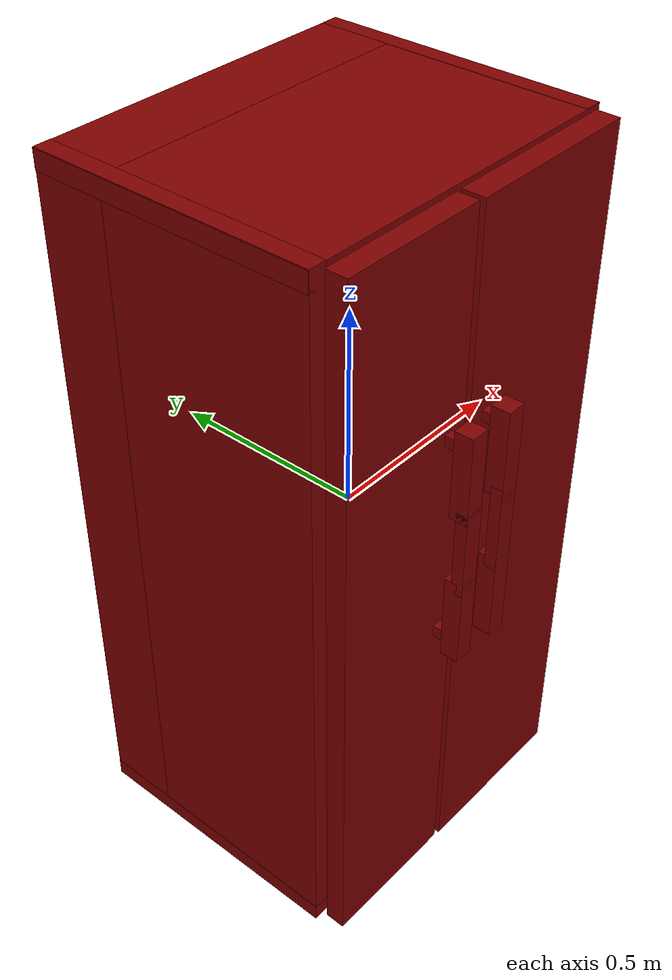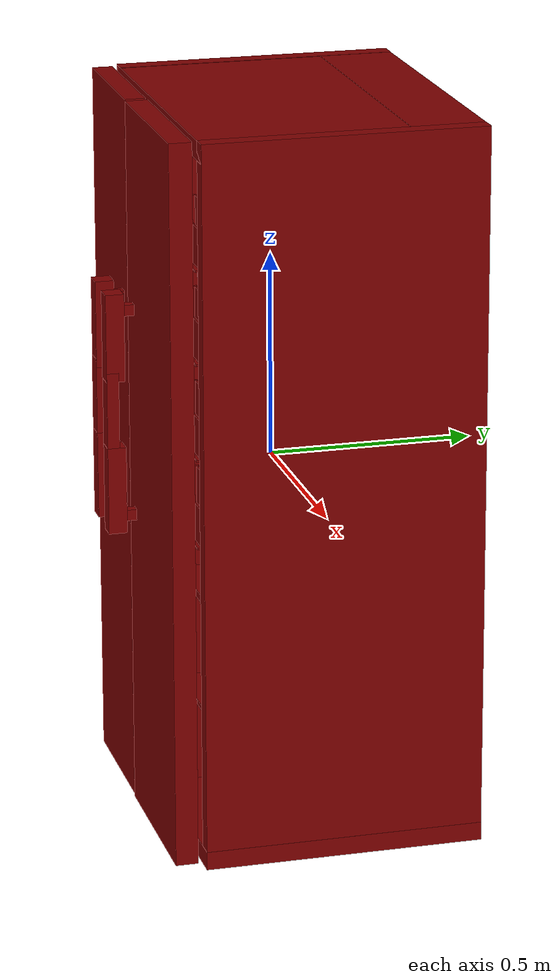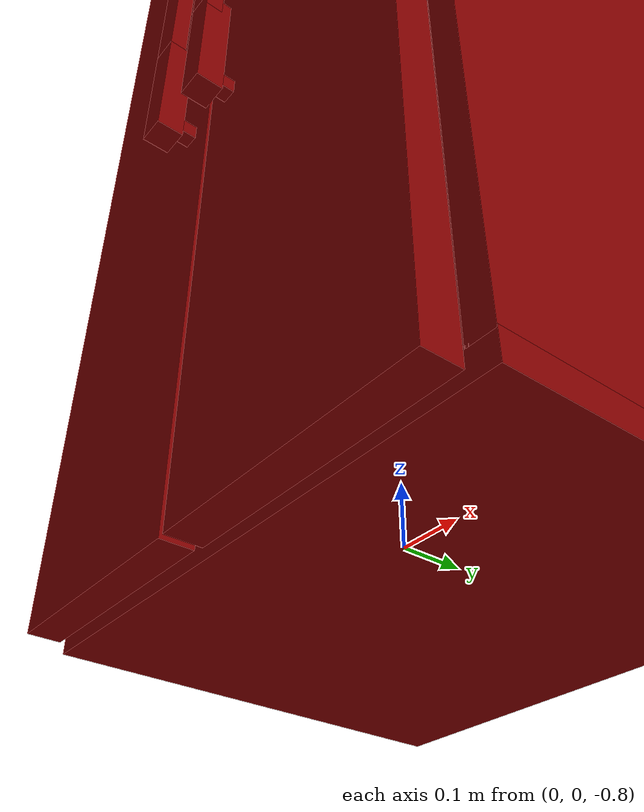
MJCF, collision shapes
<mujoco model="model">
  <compiler angle="radian"/>
  <asset>
    <mesh file="visuals/Body001.obj" name="Body001_vis"/>
    <mesh file="visuals/Body001_Clear001.obj" name="Body001_Clear001_vis"/>
    <mesh file="visuals/Door001.obj" name="Door001_vis"/>
    <mesh file="visuals/Door002.obj" name="Door002_vis"/>
    <mesh file="visuals/Door002_Clear.obj" name="Door002_Clear_vis"/>
    <mesh file="visuals/Drawer001_Clear.obj" name="Drawer001_Clear_vis"/>
    <mesh file="visuals/Drawer002_Clear.obj" name="Drawer002_Clear_vis"/>
    <mesh file="visuals/Drawer003.obj" name="Drawer003_vis"/>
    <mesh file="visuals/Drawer004.obj" name="Drawer004_vis"/>
    <texture file="visuals/T_BC001.png" name="Body001_material" type="2d"/>
    <material name="Body001_material" rgba="1 1 1 1.0" texture="Body001_material" shininess="0.6141486167907715" specular="0.3103448502657381"/>
    <texture file="visuals/T_BC001.png" name="Body001_Clear001_material" type="2d"/>
    <material name="Body001_Clear001_material" rgba="1 1 1 0.3300970792770386" texture="Body001_Clear001_material" shininess="0.141421377658844" specular="0.3103448502657381"/>
    <texture file="visuals/T_BC001.png" name="Door001_material" type="2d"/>
    <material name="Door001_material" rgba="1 1 1 1.0" texture="Door001_material" shininess="0.6141486167907715" specular="0.3103448502657381"/>
    <texture file="visuals/T_BC001.png" name="Door002_material" type="2d"/>
    <material name="Door002_material" rgba="1 1 1 1.0" texture="Door002_material" shininess="0.6141486167907715" specular="0.3103448502657381"/>
    <texture file="visuals/T_BC001.png" name="Door002_Clear_material" type="2d"/>
    <material name="Door002_Clear_material" rgba="1 1 1 0.3300970792770386" texture="Door002_Clear_material" shininess="0.141421377658844" specular="0.3103448502657381"/>
    <texture file="visuals/T_BC001.png" name="Drawer001_Clear_material" type="2d"/>
    <material name="Drawer001_Clear_material" rgba="1 1 1 0.3300970792770386" texture="Drawer001_Clear_material" shininess="0.141421377658844" specular="0.3103448502657381"/>
    <texture file="visuals/T_BC001.png" name="Drawer002_Clear_material" type="2d"/>
    <material name="Drawer002_Clear_material" rgba="1 1 1 0.3300970792770386" texture="Drawer002_Clear_material" shininess="0.141421377658844" specular="0.3103448502657381"/>
    <texture file="visuals/T_BC001.png" name="Drawer003_material" type="2d"/>
    <material name="Drawer003_material" rgba="1 1 1 1.0" texture="Drawer003_material" shininess="0.6141486167907715" specular="0.3103448502657381"/>
    <texture file="visuals/T_BC001.png" name="Drawer004_material" type="2d"/>
    <material name="Drawer004_material" rgba="1 1 1 1.0" texture="Drawer004_material" shininess="0.6141486167907715" specular="0.3103448502657381"/>
  </asset>
  <default>
    <default class="visual">
      <geom conaffinity="0" contype="0" group="1" type="mesh"/>
    </default>
    <default class="collision">
      <geom group="0" rgba="0.5 0 0 0.5"/>
    </default>
    <default class="spawn">
      <geom group="0" rgba="1 1 1 0.5" contype="0" conaffinity="0"/>
      <site group="0" rgba="1 1 1 0.5"/>
    </default>
    <default class="region">
      <geom group="1" conaffinity="0" contype="0" rgba="0 1 0 0"/>
    </default>
  </default>
  <worldbody>
    <body>
      <body name="object">
        <geom mesh="Body001_vis" type="mesh" solimp="0.998 0.998 0.001" solref="0.001 1" density="100" friction="0.95 0.3 0.1" class="visual" material="Body001_material"/>
        <geom class="collision" type="box" pos="-0.404665470123291 0.06835662573575974 0.020846953615546227" size="0.02132052183151245 0.3407823443412781 0.8622389435768127" quat="1.0 0.0 0.0 0.0"/>
        <geom class="collision" type="box" pos="1.1034586350433528e-05 0.06824090331792831 -0.8599706888198853" size="0.42693856358528137 0.34066665172576904 0.022744443267583847" quat="1.0 0.0 0.0 0.0"/>
        <geom class="collision" type="box" pos="-0.0004812699626199901 0.318954735994339 0.009348150342702866" size="0.4260132610797882 0.08952412009239197 0.8733012080192566" quat="1.0 0.0 0.0 0.0"/>
        <geom class="collision" type="box" pos="0.4053436517715454 0.0680411085486412 0.02083011530339718" size="0.02121179737150669 0.34046685695648193 0.8622220754623413" quat="1.0 0.0 0.0 0.0"/>
        <geom class="collision" type="box" pos="-0.0006881278823129833 0.06819561868906021 0.8589945435523987" size="0.42693495750427246 0.34062135219573975 0.023142635822296143" quat="1.0 0.0 0.0 0.0"/>
        <geom class="collision" type="box" pos="-0.05482075735926628 0.009541474282741547 -0.0012469887733459473" size="0.03563910722732544 0.21613867580890656 0.8478472828865051" quat="1.0 0.0 0.0 0.0"/>
        <body name="Body001_Clear001">
          <geom mesh="Body001_Clear001_vis" type="mesh" solimp="0.998 0.998 0.001" solref="0.001 1" density="100" friction="0.95 0.3 0.1" class="visual" material="Body001_Clear001_material"/>
          <geom class="collision" type="box" pos="0.00021509108773898333 0.020721379667520523 0.45877760648727417" size="0.3893549144268036 0.19650474190711975 0.009350910782814026" quat="1.0 0.0 0.0 0.0"/>
          <geom class="collision" type="box" pos="0.00021509108773898333 0.020721379667520523 0.09971345961093903" size="0.3893549144268036 0.19650474190711975 0.009350910782814026" quat="1.0 0.0 0.0 0.0"/>
          <geom class="collision" type="box" pos="0.00021509108773898333 -0.003894966095685959 -0.2862524390220642" size="0.3893549144268036 0.22112108767032623 0.009350910782814026" quat="1.0 0.0 0.0 0.0"/>
          <geom class="collision" type="box" pos="0.00021509108773898333 -0.003894966095685959 -0.5657253265380859" size="0.3893549144268036 0.22112108767032623 0.006445929408073425" quat="1.0 0.0 0.0 0.0"/>
        </body>
        <body name="Door001">
          <joint axis="0.0 0.0 -1.0" pos="-0.40002986788749695 -0.3169689178466797 0.0" limited="true" name="Door001_joint" range="0.0 1.5707963267948966" type="hinge" damping="1" frictionloss="1" armature=".01" stiffness="0.05"/>
          <geom mesh="Door001_vis" type="mesh" solimp="0.998 0.998 0.001" solref="0.001 1" density="100" friction="0.95 0.3 0.1" class="visual" material="Door001_material"/>
          <geom class="collision" type="box" pos="-0.10201721638441086 -0.34961700439453125 0.39473000168800354" size="0.012457430362701416 0.022546809166669846 0.013203483074903488" quat="1.0 0.0 0.0 0.0"/>
          <geom class="collision" type="box" pos="-0.10201721638441086 -0.3496171236038208 -0.1138010323047638" size="0.012457430362701416 0.022546809166669846 0.013203475624322891" quat="1.0 0.0 0.0 0.0"/>
          <geom class="collision" type="box" pos="-0.10135062783956528 -0.38813018798828125 0.3314574956893921" size="0.02305717021226883 0.022403938695788383 0.10686296969652176" quat="1.0 0.0 0.0 0.0"/>
          <geom class="collision" type="box" pos="-0.10135062783956528 -0.3887820243835449 -0.04615949094295502" size="0.02305717021226883 0.02240392193198204 0.10686295479536057" quat="1.0 0.0 0.0 0.0"/>
          <geom class="collision" type="box" pos="-0.10135062783956528 -0.3965485095977783 0.13958685100078583" size="0.02305717021226883 0.014506700448691845 0.10626012086868286" quat="1.0 0.0 0.0 0.0"/>
          <geom class="collision" type="box" pos="-0.22960230708122253 -0.3130020201206207 0.0032975971698760986" size="0.17586880922317505 0.0246364064514637 0.879378080368042" quat="1.0 0.0 0.0 0.0"/>
          <geom class="collision" type="box" pos="-0.1429583728313446 -0.19995424151420593 -0.04004654288291931" size="0.005480065941810608 0.030950354412198067 0.0417511947453022" quat="1.0 0.0 0.0 0.0"/>
          <geom class="collision" type="box" pos="-0.24828274548053741 -0.17317214608192444 -0.04164653643965721" size="0.10006259381771088 0.002234865678474307 0.0401512011885643" quat="1.0 0.0 0.0 0.0"/>
          <geom class="collision" type="box" pos="-0.3501081168651581 -0.19995424151420593 -0.04004654288291931" size="0.005480064079165459 0.030950354412198067 0.0417511947453022" quat="1.0 0.0 0.0 0.0"/>
          <geom class="collision" type="box" pos="-0.2466852366924286 -0.19995424151420593 -0.07657581567764282" size="0.09915632009506226 0.030950354412198067 0.005221928935497999" quat="1.0 0.0 0.0 0.0"/>
        </body>
        <body name="Door002">
          <joint axis="0.0 0.0 1.0" pos="0.39907026290893555 -0.3187134861946106 0.04999999701976776" limited="true" name="Door002_joint" range="0.0 1.5707963267948966" type="hinge" damping="1" frictionloss="1" armature=".01" stiffness="0.05"/>
          <geom mesh="Door002_vis" type="mesh" solimp="0.998 0.998 0.001" solref="0.001 1" density="100" friction="0.95 0.3 0.1" class="visual" material="Door002_material"/>
          <geom class="collision" type="box" pos="0.01425793394446373 -0.35071057081222534 0.39272022247314453" size="0.012511680833995342 0.022646810859441757 0.013261116109788418" quat="1.0 0.0 0.0 0.0"/>
          <geom class="collision" type="box" pos="0.01425793394446373 -0.3507106900215149 -0.11811678111553192" size="0.012511749751865864 0.02264687977731228 0.013261177577078342" quat="1.0 0.0 0.0 0.0"/>
          <geom class="collision" type="box" pos="0.014927539974451065 -0.38939788937568665 0.32916080951690674" size="0.023157522082328796 0.022503428161144257 0.10733073204755783" quat="1.0 0.0 0.0 0.0"/>
          <geom class="collision" type="box" pos="0.014927539974451065 -0.38918447494506836 -0.05016852915287018" size="0.02315765805542469 0.022503480315208435 0.10733126848936081" quat="1.0 0.0 0.0 0.0"/>
          <geom class="collision" type="box" pos="0.014927539974451065 -0.39698612689971924 0.1364200860261917" size="0.023157795891165733 0.014570517465472221 0.10672624409198761" quat="1.0 0.0 0.0 0.0"/>
          <geom class="collision" type="box" pos="0.1775883436203003 -0.3131760358810425 0.002197049558162689" size="0.2170318365097046 0.027240917086601257 0.8798536062240601" quat="1.0 0.0 0.0 0.0"/>
          <body name="Door002_Clear">
            <geom mesh="Door002_Clear_vis" type="mesh" solimp="0.998 0.998 0.001" solref="0.001 1" density="100" friction="0.95 0.3 0.1" class="visual" material="Door002_Clear_material"/>
            <geom class="collision" type="box" pos="0.35212770104408264 -0.2222888320684433 0.16216212511062622" size="0.004108804743736982 0.03251062333583832 0.04862546920776367" quat="1.0 0.0 0.0 0.0"/>
            <geom class="collision" type="box" pos="0.03371753171086311 -0.2222888320684433 0.16216212511062622" size="0.00410880520939827 0.03251062333583832 0.04862546920776367" quat="1.0 0.0 0.0 0.0"/>
            <geom class="collision" type="box" pos="0.19286145269870758 -0.19397109746932983 0.16216212511062622" size="0.16337506473064423 0.0021437890827655792 0.04862546920776367" quat="1.0 0.0 0.0 0.0"/>
            <geom class="collision" type="box" pos="0.19286145269870758 -0.24205541610717773 0.11610843241214752" size="0.16337506473064423 0.029638219624757767 0.00257178395986557" quat="1.0 0.0 0.0 0.0"/>
            <geom class="collision" type="box" pos="0.19286145269870758 -0.26059162616729736 0.1621621549129486" size="0.16337506473064423 0.002143790014088154 0.04862546920776367" quat="1.0 0.0 0.0 0.0"/>
            <geom class="collision" type="box" pos="0.19286145269870758 -0.2610926032066345 -0.05256009101867676" size="0.16337506473064423 0.002143790014088154 0.048766158521175385" quat="1.0 0.0 0.0 0.0"/>
            <geom class="collision" type="box" pos="0.19286145269870758 -0.24233679473400116 -0.09875448048114777" size="0.16337506473064423 0.02935684844851494 0.00257178395986557" quat="1.0 0.0 0.0 0.0"/>
            <geom class="collision" type="box" pos="0.19286145269870758 -0.19305667281150818 -0.05256010591983795" size="0.16337506473064423 0.0021437890827655792 0.048766158521175385" quat="1.0 0.0 0.0 0.0"/>
            <geom class="collision" type="box" pos="0.03371753171086311 -0.2210930436849594 -0.05256010591983795" size="0.00410880520939827 0.03222925215959549 0.048766158521175385" quat="1.0 0.0 0.0 0.0"/>
            <geom class="collision" type="box" pos="0.35212770104408264 -0.2210930436849594 -0.05256010591983795" size="0.004108804743736982 0.03222925215959549 0.048766158521175385" quat="1.0 0.0 0.0 0.0"/>
            <geom class="collision" type="box" pos="0.03371753171086311 -0.22245091199874878 0.3939443826675415" size="0.00410880520939827 0.03287752717733383 0.049426592886447906" quat="1.0 0.0 0.0 0.0"/>
            <geom class="collision" type="box" pos="0.19439667463302612 -0.1937662661075592 0.3939443826675415" size="0.15882854163646698 0.0021437890827655792 0.049426592886447906" quat="1.0 0.0 0.0 0.0"/>
            <geom class="collision" type="box" pos="0.19286145269870758 -0.24168851971626282 0.34708958864212036" size="0.16337506473064423 0.03000512346625328 0.00257178395986557" quat="1.0 0.0 0.0 0.0"/>
            <geom class="collision" type="box" pos="0.19286145269870758 -0.25984832644462585 0.3939443826675415" size="0.16337506473064423 0.002143790014088154 0.049426592886447906" quat="1.0 0.0 0.0 0.0"/>
            <geom class="collision" type="box" pos="0.19286145269870758 -0.2412542998790741 0.5701086521148682" size="0.16337506473064423 0.030439343303442 0.00257178395986557" quat="1.0 0.0 0.0 0.0"/>
            <geom class="collision" type="box" pos="0.19286145269870758 -0.19083572924137115 0.6163772344589233" size="0.16337506473064423 0.0021437890827655792 0.04884042590856552" quat="1.0 0.0 0.0 0.0"/>
            <geom class="collision" type="box" pos="0.03371753171086311 -0.22599251568317413 0.6163772344589233" size="0.00410880520939827 0.03331174701452255 0.04884042590856552" quat="1.0 0.0 0.0 0.0"/>
            <geom class="collision" type="box" pos="0.35212770104408264 -0.22599251568317413 0.6163772344589233" size="0.004108804743736982 0.03331174701452255 0.04884042590856552" quat="1.0 0.0 0.0 0.0"/>
            <geom class="collision" type="box" pos="0.35212770104408264 -0.22245091199874878 0.3939443826675415" size="0.004108804743736982 0.03287752717733383 0.049426592886447906" quat="1.0 0.0 0.0 0.0"/>
            <geom class="collision" type="box" pos="0.19286145269870758 -0.25838133692741394 0.6163772344589233" size="0.16337506473064423 0.002143790014088154 0.04884042590856552" quat="1.0 0.0 0.0 0.0"/>
          </body>
        </body>
        <body name="Drawer001_Clear">
          <joint axis="0.0 -1.0 0.0" pos="0.16711631417274475 0.0024448158219456673 -0.7121149897575378" limited="true" name="Drawer001_Clear_joint" range="0.0 0.3" type="slide" damping="1" frictionloss="1" armature=".01" stiffness="0.05"/>
          <geom mesh="Drawer001_Clear_vis" type="mesh" solimp="0.998 0.998 0.001" solref="0.001 1" density="100" friction="0.95 0.3 0.1" class="visual" material="Drawer001_Clear_material"/>
          <geom class="collision" type="box" pos="0.16667470335960388 -0.16750241816043854 -0.7121796607971191" size="0.17228037118911743 0.005289810243993998 0.11878462880849838" quat="1.0 0.0 0.0 0.0"/>
          <geom class="collision" type="box" pos="0.16691753268241882 0.1754349023103714 -0.7145007848739624" size="0.16991481184959412 0.0025983548257499933 0.11639384180307388" quat="1.0 0.0 0.0 0.0"/>
          <geom class="collision" type="box" pos="-0.00014462321996688843 0.005311822053045034 -0.7145007848739624" size="0.0028379971627146006 0.16754133999347687 0.11639337986707687" quat="1.0 0.0 0.0 0.0"/>
          <geom class="collision" type="box" pos="0.33362334966659546 0.005311822053045034 -0.7145007848739624" size="0.0028379857540130615 0.16754083335399628 0.11639294028282166" quat="1.0 0.0 0.0 0.0"/>
          <geom class="collision" type="box" pos="0.16691753268241882 0.005311822053045034 -0.8278334736824036" size="0.169913649559021 0.16754032671451569 0.002837785053998232" quat="1.0 0.0 0.0 0.0"/>
        </body>
        <body name="Drawer002_Clear">
          <joint axis="0.0 -1.0 0.0" pos="0.16711631417274475 0.002444830723106861 -0.4384019374847412" limited="true" name="Drawer002_Clear_joint" range="0.0 0.3" type="slide" damping="1" frictionloss="1" armature=".01" stiffness="0.05"/>
          <geom mesh="Drawer002_Clear_vis" type="mesh" solimp="0.998 0.998 0.001" solref="0.001 1" density="100" friction="0.95 0.3 0.1" class="visual" material="Drawer002_Clear_material"/>
          <geom class="collision" type="box" pos="0.16607245802879333 0.0052926442585885525 -0.5465587973594666" size="0.16749440133571625 0.16515366733074188 0.0027973586693406105" quat="1.0 0.0 0.0 0.0"/>
          <geom class="collision" type="box" pos="0.33040231466293335 0.0052926442585885525 -0.43463510274887085" size="0.0027975966222584248 0.16515351831912994 0.11494091898202896" quat="1.0 0.0 0.0 0.0"/>
          <geom class="collision" type="box" pos="0.0013913160655647516 0.0052926442585885525 -0.43463510274887085" size="0.002797591034322977 0.1651533544063568 0.11494070291519165" quat="1.0 0.0 0.0 0.0"/>
          <geom class="collision" type="box" pos="0.16607247292995453 0.172991082072258 -0.43463510274887085" size="0.16749392449855804 0.002561309840530157 0.11494048684835434" quat="1.0 0.0 0.0 0.0"/>
          <geom class="collision" type="box" pos="0.16601096093654633 -0.16505859792232513 -0.4358549416065216" size="0.17000310122966766 0.0052143726497888565 0.12080448120832443" quat="1.0 0.0 0.0 0.0"/>
        </body>
        <body name="Drawer003">
          <joint axis="0.0 -1.0 0.0" pos="-0.21256954967975616 -0.00039485562592744827 -0.7142730951309204" limited="true" name="Drawer003_joint" range="0.0 0.3" type="slide" damping="1" frictionloss="1" armature=".01" stiffness="0.05"/>
          <geom mesh="Drawer003_vis" type="mesh" solimp="0.998 0.998 0.001" solref="0.001 1" density="100" friction="0.95 0.3 0.1" class="visual" material="Drawer003_material"/>
          <geom class="collision" type="box" pos="-0.21376189589500427 -0.0004467405378818512 -0.819443941116333" size="0.11214364320039749 0.15560993552207947 0.0026357120368629694" quat="1.0 0.0 0.0 0.0"/>
          <geom class="collision" type="box" pos="-0.10459743440151215 -0.0004467405378818512 -0.7102537751197815" size="0.0026359062176197767 0.1556098759174347 0.11203012615442276" quat="1.0 0.0 0.0 0.0"/>
          <geom class="collision" type="box" pos="-0.32325732707977295 -0.0004467405378818512 -0.7102537155151367" size="0.0026359043549746275 0.15560980141162872 0.11202997714281082" quat="1.0 0.0 0.0 0.0"/>
          <geom class="collision" type="box" pos="-0.21376188099384308 0.15756434202194214 -0.7102537751197815" size="0.11214320361614227 0.002413302892819047 0.11202980577945709" quat="1.0 0.0 0.0 0.0"/>
          <geom class="collision" type="box" pos="-0.2134205549955368 -0.16095739603042603 -0.7114031314849854" size="0.11757725477218628 0.004913060925900936 0.11755485832691193" quat="1.0 0.0 0.0 0.0"/>
        </body>
        <body name="Drawer004">
          <joint axis="0.0 -1.0 0.0" pos="-0.21256954967975616 -0.00039485562592744827 -0.4384995698928833" limited="true" name="Drawer004_joint" range="0.0 0.3" type="slide" damping="1" frictionloss="1" armature=".01" stiffness="0.05"/>
          <geom mesh="Drawer004_vis" type="mesh" solimp="0.998 0.998 0.001" solref="0.001 1" density="100" friction="0.95 0.3 0.1" class="visual" material="Drawer004_material"/>
          <geom class="collision" type="box" pos="-0.21180233359336853 -0.15861248970031738 -0.4371505379676819" size="0.117710180580616 0.004918631631880999 0.11766860634088516" quat="1.0 0.0 0.0 0.0"/>
          <geom class="collision" type="box" pos="-0.21214403212070465 0.16026955842971802 -0.4359998404979706" size="0.11226984858512878 0.0024160384200513363 0.11213696748018265" quat="1.0 0.0 0.0 0.0"/>
          <geom class="collision" type="box" pos="-0.3217633366584778 0.0020797241013497114 -0.4359998404979706" size="0.0026388755068182945 0.15578614175319672 0.11213703453540802" quat="1.0 0.0 0.0 0.0"/>
          <geom class="collision" type="box" pos="-0.1028561070561409 0.0020797241013497114 -0.4359998404979706" size="0.002638873178511858 0.1557861566543579 0.11213710159063339" quat="1.0 0.0 0.0 0.0"/>
          <geom class="collision" type="box" pos="-0.21214404702186584 0.0020797241013497114 -0.545293927192688" size="0.11226989328861237 0.1557861715555191 0.0026386966928839684" quat="1.0 0.0 0.0 0.0"/>
        </body>
        <geom class="region" name="reg_main" type="box" pos="8.046627044677734e-07 0.033127397298812866 0.0" size="0.42782869935035706 0.37656739354133606 0.8832575678825378"/>
      </body>
    </body>
  </worldbody>
  <actuator>
    <motor name="Door001_joint_actuator" joint="Door001_joint" gear="50"/>
    <motor name="Door002_joint_actuator" joint="Door002_joint" gear="50"/>
    <motor name="Drawer001_Clear_joint_actuator" joint="Drawer001_Clear_joint" gear="50"/>
    <motor name="Drawer002_Clear_joint_actuator" joint="Drawer002_Clear_joint" gear="50"/>
    <motor name="Drawer003_joint_actuator" joint="Drawer003_joint" gear="50"/>
    <motor name="Drawer004_joint_actuator" joint="Drawer004_joint" gear="50"/>
  </actuator>
</mujoco>
